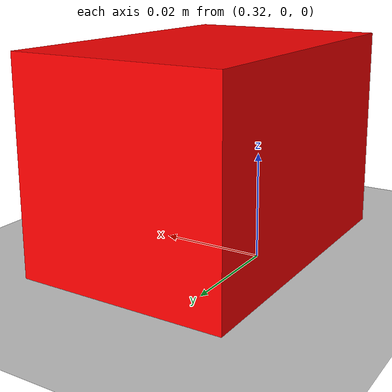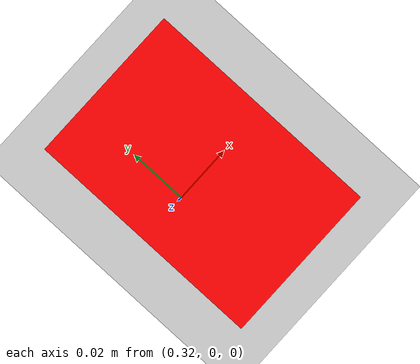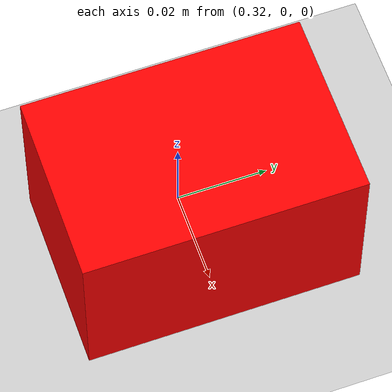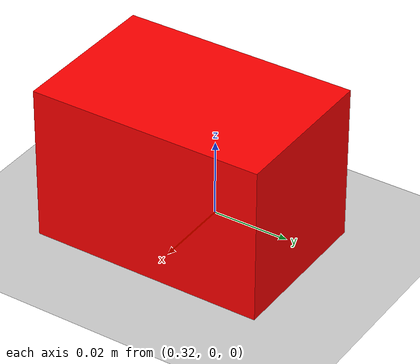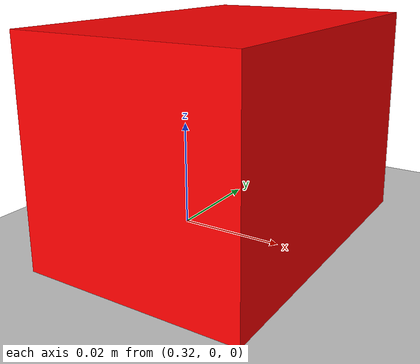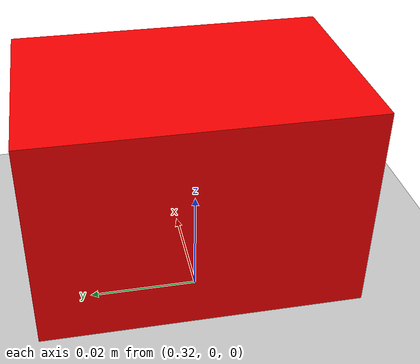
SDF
<?xml version="1.0"?>
<!-- 씬: 도달 불가 위치의 빨간 블록 (실패 시나리오 테스트용, M5 자가복구 기초).
     블록을 팔 도달 범위(L1+L2+오프셋 ~0.28m) 밖인 x=0.33에 둔다.
     인지는 검출하지만 solve_ik가 UNREACHABLE → 스킬서버 abort → 에이전트 복구 판단.
     "카메라는 봤는데 못 집는" 케이스를 sim에서 재현. -->
<sdf version="1.10">
  <world name="empty">
    <physics name="1ms" type="ignored">
      <!-- 파지는 접촉이 지배한다. 5ms에서는 한 스텝에 손가락이
           블록 안으로 파고들어 관절값이 오염됐다(2026-08-07 실측:
           블록을 쥔 채 gripper_joint_1 = -5e-05, 즉 완전 닫힘).
           1ms로 낮춰 관통 깊이를 줄인다. 대가는 물리 계산량 5배. -->
      <max_step_size>0.001</max_step_size>
      <real_time_factor>1</real_time_factor>
      <real_time_update_rate>1000</real_time_update_rate>
    </physics>
    <plugin name="gz::sim::systems::Physics" filename="gz-sim-physics-system"/>
    <plugin name="gz::sim::systems::UserCommands" filename="gz-sim-user-commands-system"/>
    <plugin name="gz::sim::systems::SceneBroadcaster" filename="gz-sim-scene-broadcaster-system"/>
    <plugin name="gz::sim::systems::Contact" filename="gz-sim-contact-system"/>
    <plugin name="gz::sim::systems::Sensors" filename="gz-sim-sensors-system">
      <render_engine>ogre2</render_engine>
    </plugin>
    <gravity>0 0 -9.8</gravity>
    <scene>
      <ambient>0.4 0.4 0.4 1</ambient>
      <background>0.7 0.7 0.7 1</background>
      <shadows>true</shadows>
    </scene>

    <model name="ground_plane">
      <static>true</static>
      <link name="link">
        <collision name="collision">
          <geometry><plane><normal>0 0 1</normal><size>100 100</size></plane></geometry>
          <surface><friction><ode/></friction></surface>
        </collision>
        <visual name="visual">
          <geometry><plane><normal>0 0 1</normal><size>100 100</size></plane></geometry>
          <material>
            <ambient>0.8 0.8 0.8 1</ambient>
            <diffuse>0.8 0.8 0.8 1</diffuse>
          </material>
        </visual>
      </link>
    </model>

    <light name="sun" type="directional">
      <pose>0 0 10 0 0 0</pose>
      <cast_shadows>true</cast_shadows>
      <intensity>1</intensity>
      <direction>-0.5 0.1 -0.9</direction>
      <diffuse>0.8 0.8 0.8 1</diffuse>
      <specular>0.2 0.2 0.2 1</specular>
      <attenuation><range>1000</range><linear>0.01</linear><constant>0.9</constant><quadratic>0.001</quadratic></attenuation>
    </light>

    <!-- === 씬 오브젝트: 도달 불가 위치의 빨간 블록 (x=0.33, 팔 밖) === -->
    <model name="red_block">
      <pose>0.33 0.0 0.02 0 0 0</pose>
      <link name="link">
        <inertial>
          <mass>0.05</mass>
          <inertia><ixx>0.0000217</ixx><ixy>0</ixy><ixz>0</ixz><iyy>0.0000133</iyy><iyz>0</iyz><izz>0.0000217</izz></inertia>
        </inertial>
        <collision name="collision">
          <geometry><box><size>0.04 0.06 0.04</size></box></geometry>
          <surface><friction><ode><mu>1.0</mu><mu2>1.0</mu2></ode></friction></surface>
        </collision>
        <visual name="visual">
          <geometry><box><size>0.04 0.06 0.04</size></box></geometry>
          <material><ambient>1 0 0 1</ambient><diffuse>1 0 0 1</diffuse><specular>0.1 0.1 0.1 1</specular></material>
        </visual>
      </link>
    </model>

  </world>
</sdf>
